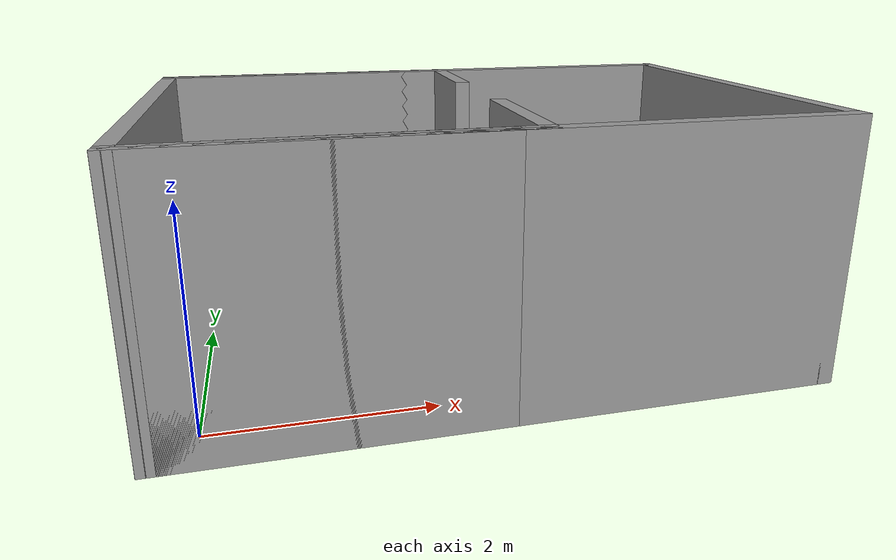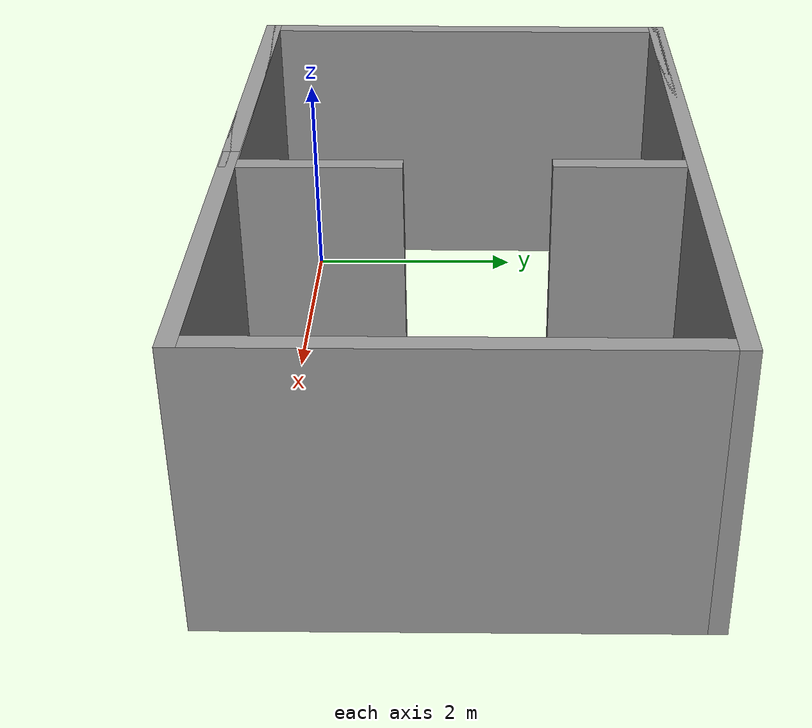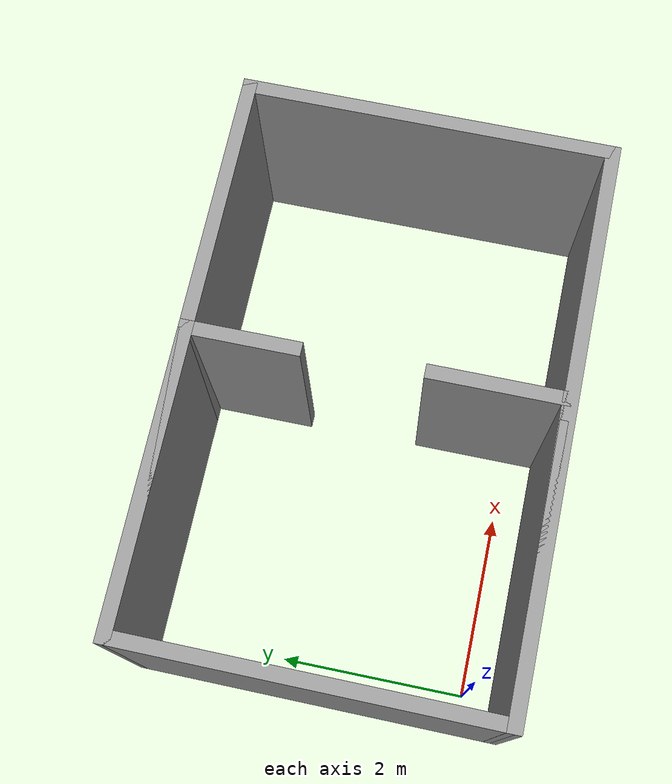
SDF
<?xml version='1.0'?>
<sdf version='1.6'>
  <model name='new'>
    <pose frame=''>2.58229 1.5303 0 0 -0 0</pose>
    <link name='Wall_11'>
      <collision name='Wall_11_Collision'>
        <geometry>
          <box>
            <size>6.02 0.15 2.5</size>
          </box>
        </geometry>
        <pose frame=''>0 0 1.25 0 -0 0</pose>
      </collision>
      <visual name='Wall_11_Visual'>
        <pose frame=''>0 0 1.25 0 -0 0</pose>
        <geometry>
          <box>
            <size>6.02 0.15 2.5</size>
          </box>
        </geometry>
        <material>
          <script>
            <uri>file://media/materials/scripts/gazebo.material</uri>
            <name>Gazebo/Grey</name>
          </script>
          <ambient>1 1 1 1</ambient>
        </material>
      </visual>
      <pose frame=''>0.000194 -1.925 0 0 -0 0</pose>
    </link>
    <link name='Wall_13'>
      <collision name='Wall_13_Collision'>
        <geometry>
          <box>
            <size>4 0.15 2.5</size>
          </box>
        </geometry>
        <pose frame=''>0 0 1.25 0 -0 0</pose>
      </collision>
      <visual name='Wall_13_Visual'>
        <pose frame=''>0 0 1.25 0 -0 0</pose>
        <geometry>
          <box>
            <size>4 0.15 2.5</size>
          </box>
        </geometry>
        <material>
          <script>
            <uri>file://media/materials/scripts/gazebo.material</uri>
            <name>Gazebo/Grey</name>
          </script>
          <ambient>1 1 1 1</ambient>
        </material>
      </visual>
      <pose frame=''>2.93519 0 0 0 -0 1.5708</pose>
    </link>
    <link name='Wall_14'>
      <collision name='Wall_14_Collision'>
        <geometry>
          <box>
            <size>6 0.15 2.5</size>
          </box>
        </geometry>
        <pose frame=''>0 0 1.25 0 -0 0</pose>
      </collision>
      <visual name='Wall_14_Visual'>
        <pose frame=''>0 0 1.25 0 -0 0</pose>
        <geometry>
          <box>
            <size>6 0.15 2.5</size>
          </box>
        </geometry>
        <material>
          <script>
            <uri>file://media/materials/scripts/gazebo.material</uri>
            <name>Gazebo/Grey</name>
          </script>
          <ambient>1 1 1 1</ambient>
        </material>
      </visual>
      <pose frame=''>0.010194 1.925 0 0 -0 3.14159</pose>
    </link>
    <link name='Wall_15'>
      <collision name='Wall_15_Collision'>
        <geometry>
          <box>
            <size>4 0.15 2.5</size>
          </box>
        </geometry>
        <pose frame=''>0 0 1.25 0 -0 0</pose>
      </collision>
      <visual name='Wall_15_Visual'>
        <pose frame=''>0 0 1.25 0 -0 0</pose>
        <geometry>
          <box>
            <size>4 0.15 2.5</size>
          </box>
        </geometry>
        <material>
          <script>
            <uri>file://media/materials/scripts/gazebo.material</uri>
            <name>Gazebo/Grey</name>
          </script>
          <ambient>1 1 1 1</ambient>
        </material>
      </visual>
      <pose frame=''>-2.92481 0 0 0 0 -1.57599</pose>
    </link>
    <link name='Wall_17'>
      <collision name='Wall_17_Collision'>
        <geometry>
          <box>
            <size>3 0.15 2.5</size>
          </box>
        </geometry>
        <pose frame=''>0 0 1.25 0 -0 0</pose>
      </collision>
      <visual name='Wall_17_Visual'>
        <pose frame=''>0 0 1.25 0 -0 0</pose>
        <geometry>
          <box>
            <size>3 0.15 2.5</size>
          </box>
        </geometry>
        <material>
          <script>
            <uri>file://media/materials/scripts/gazebo.material</uri>
            <name>Gazebo/Grey</name>
          </script>
          <ambient>1 1 1 1</ambient>
        </material>
      </visual>
      <pose frame=''>-1.50981 -1.925 0 0 -0 0</pose>
    </link>
    <link name='Wall_18'>
      <collision name='Wall_18_Collision'>
        <geometry>
          <box>
            <size>3 0.15 2.5</size>
          </box>
        </geometry>
        <pose frame=''>0 0 1.25 0 -0 0</pose>
      </collision>
      <visual name='Wall_18_Visual'>
        <pose frame=''>0 0 1.25 0 -0 0</pose>
        <geometry>
          <box>
            <size>3 0.15 2.5</size>
          </box>
        </geometry>
        <material>
          <script>
            <uri>file://media/materials/scripts/gazebo.material</uri>
            <name>Gazebo/Grey</name>
          </script>
          <ambient>1 1 1 1</ambient>
        </material>
      </visual>
      <pose frame=''>-1.50981 -1.925 0 0 -0 3.14159</pose>
    </link>
    <link name='Wall_19'>
      <collision name='Wall_19_Collision'>
        <geometry>
          <box>
            <size>3.30006 0.15 2.5</size>
          </box>
        </geometry>
        <pose frame=''>0 0 1.25 0 -0 0</pose>
      </collision>
      <visual name='Wall_19_Visual'>
        <pose frame=''>0 0 1.25 0 -0 0</pose>
        <geometry>
          <box>
            <size>3.30006 0.15 2.5</size>
          </box>
        </geometry>
        <material>
          <script>
            <uri>file://media/materials/scripts/gazebo.material</uri>
            <name>Gazebo/Grey</name>
          </script>
          <ambient>1 1 1 1</ambient>
        </material>
      </visual>
      <pose frame=''>-1.35981 -1.92 0 0 -0 0.003175</pose>
    </link>
    <link name='Wall_20'>
      <collision name='Wall_20_Collision'>
        <geometry>
          <box>
            <size>1.5 0.15 2.5</size>
          </box>
        </geometry>
        <pose frame=''>0 0 1.25 0 -0 0</pose>
      </collision>
      <visual name='Wall_20_Visual'>
        <pose frame=''>0 0 1.25 0 -0 0</pose>
        <geometry>
          <box>
            <size>1.5 0.15 2.5</size>
          </box>
        </geometry>
        <material>
          <script>
            <uri>file://media/materials/scripts/gazebo.material</uri>
            <name>Gazebo/Grey</name>
          </script>
          <ambient>1 1 1 1</ambient>
        </material>
      </visual>
      <pose frame=''>0.215194 -1.23 0 0 -0 1.5708</pose>
    </link>
    <link name='Wall_22'>
      <collision name='Wall_22_Collision'>
        <geometry>
          <box>
            <size>3.25 0.15 2.5</size>
          </box>
        </geometry>
        <pose frame=''>0 0 1.25 0 -0 0</pose>
      </collision>
      <visual name='Wall_22_Visual'>
        <pose frame=''>0 0 1.25 0 -0 0</pose>
        <geometry>
          <box>
            <size>3.25 0.15 2.5</size>
          </box>
        </geometry>
        <material>
          <script>
            <uri>file://media/materials/scripts/gazebo.material</uri>
            <name>Gazebo/Grey</name>
          </script>
          <ambient>1 1 1 1</ambient>
        </material>
      </visual>
      <pose frame=''>-1.36481 1.925 0 0 -0 0</pose>
    </link>
    <link name='Wall_23'>
      <collision name='Wall_23_Collision'>
        <geometry>
          <box>
            <size>1.25 0.15 2.5</size>
          </box>
        </geometry>
        <pose frame=''>0 0 1.25 0 -0 0</pose>
      </collision>
      <visual name='Wall_23_Visual'>
        <pose frame=''>0 0 1.25 0 -0 0</pose>
        <geometry>
          <box>
            <size>1.25 0.15 2.5</size>
          </box>
        </geometry>
        <material>
          <script>
            <uri>file://media/materials/scripts/gazebo.material</uri>
            <name>Gazebo/Grey</name>
          </script>
          <ambient>1 1 1 1</ambient>
        </material>
      </visual>
      <pose frame=''>0.185194 1.375 0 0 0 -1.5708</pose>
    </link>
    <static>1</static>
  </model>
</sdf>
